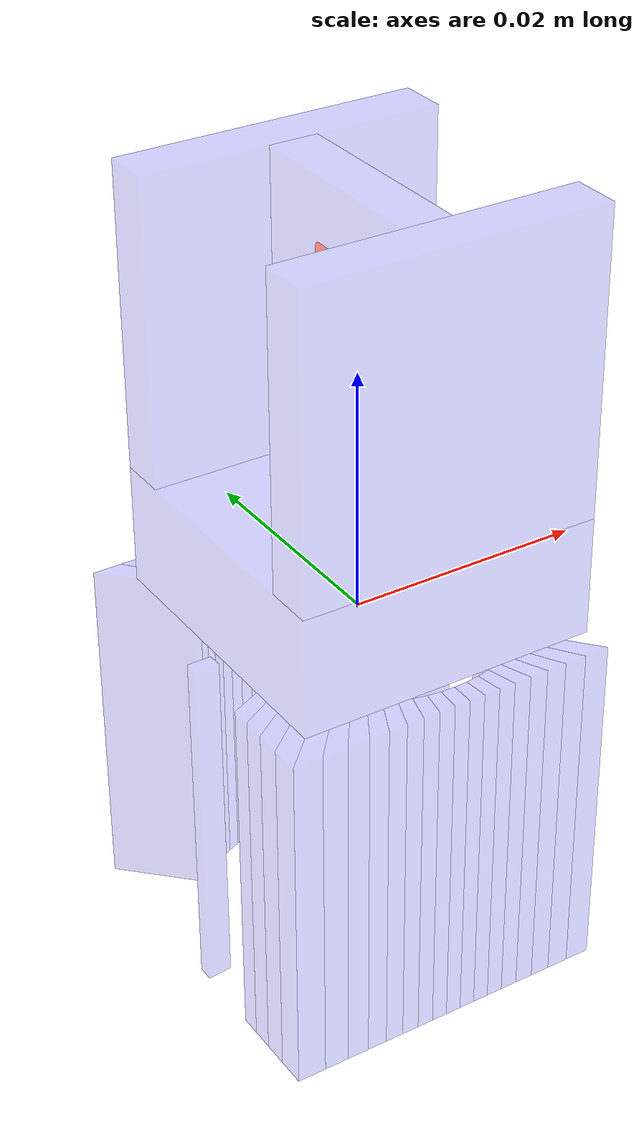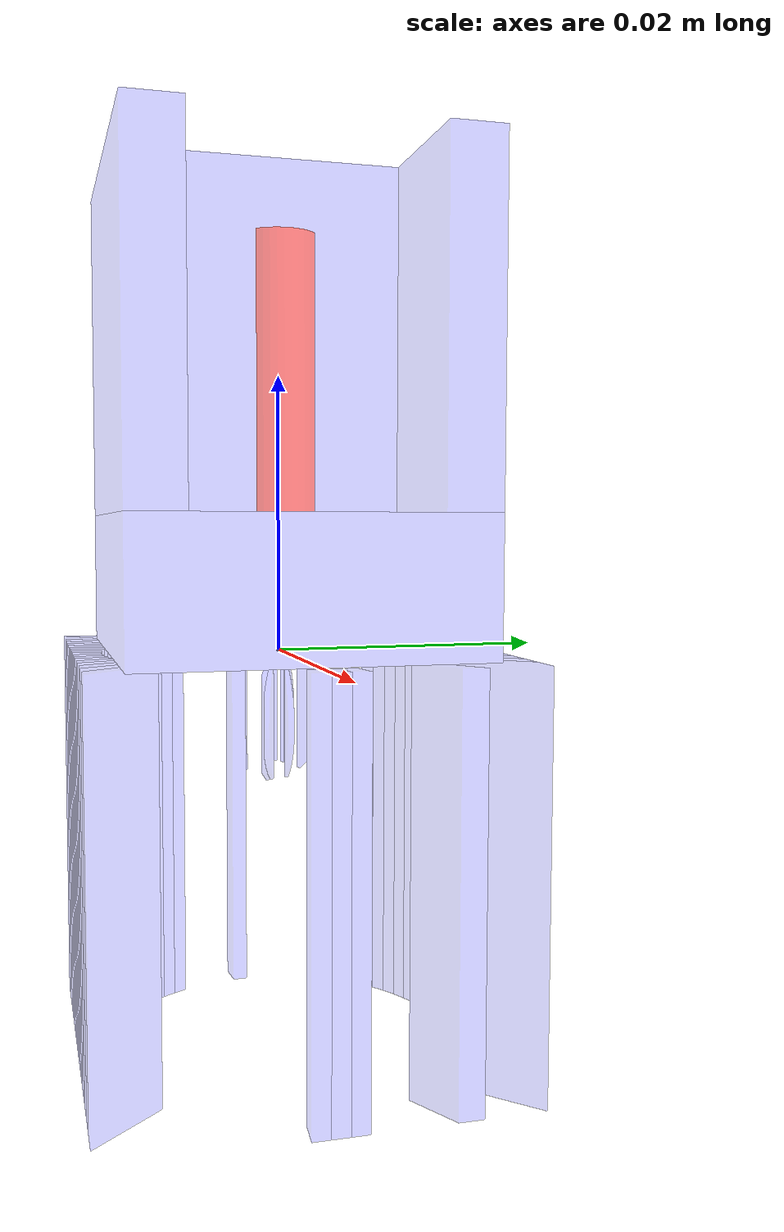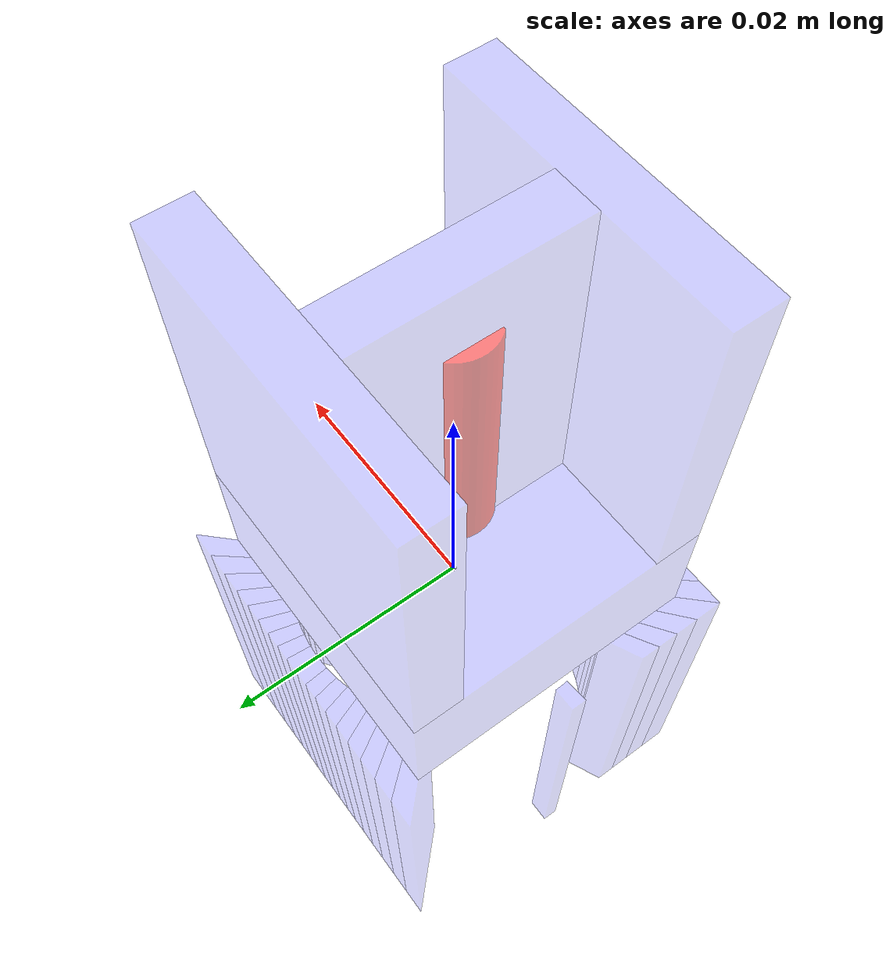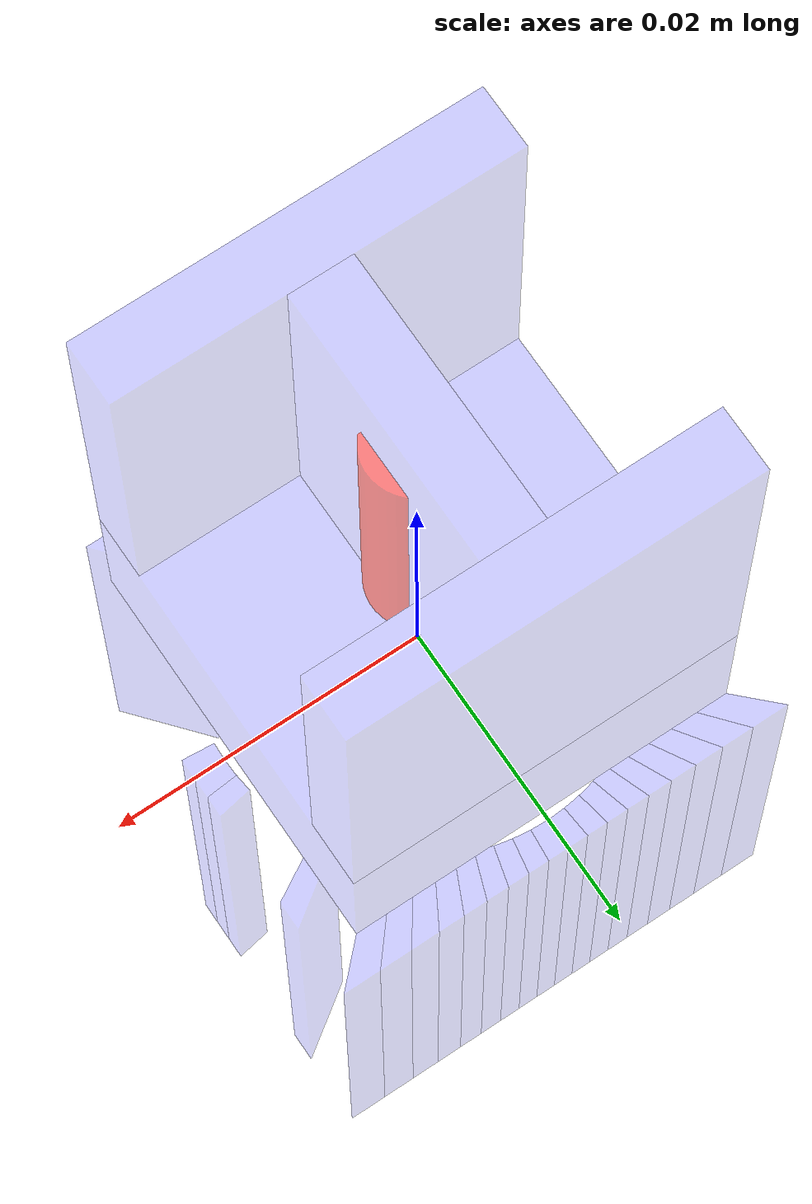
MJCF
<mujoco>
    <option timestep=".001">
        <flag energy="enable" contact="enable" override="enable"/>
    </option>

    <default>
        <default class="hole_geom">
            <geom xyaxes="1 0 0 0 1 0" rgba="0 0 1 0.2"/>
        </default>
        <site size="0.0002" />
        <geom friction="5" />
    </default>

    <visual>
        <global offwidth="960" offheight="720"/>
    </visual>

    <asset>
        <mesh name="peg1" file="../asset/key_peg/key_peg/decomposition/Body1.stl" />
        <mesh name="peg2" file="../asset/key_peg/key_peg/decomposition/Body2.stl" />

        <mesh name="hole1" file="../asset/key_peg/key_hole/decomposition/Body1.stl" />
        <mesh name="hole2" file="../asset/key_peg/key_hole/decomposition/Body2.stl" />
        <mesh name="hole3" file="../asset/key_peg/key_hole/decomposition/Body3.stl" />
        <mesh name="hole4" file="../asset/key_peg/key_hole/decomposition/Body4.stl" />
        <mesh name="hole5" file="../asset/key_peg/key_hole/decomposition/Body5.stl" />
        <mesh name="hole6" file="../asset/key_peg/key_hole/decomposition/Body6.stl" />
        <mesh name="hole7" file="../asset/key_peg/key_hole/decomposition/Body7.stl" />
        <mesh name="hole8" file="../asset/key_peg/key_hole/decomposition/Body8.stl" />
        <mesh name="hole9" file="../asset/key_peg/key_hole/decomposition/Body9.stl" />
        <mesh name="hole10" file="../asset/key_peg/key_hole/decomposition/Body10.stl" />
        <mesh name="hole11" file="../asset/key_peg/key_hole/decomposition/Body11.stl" />
        <mesh name="hole12" file="../asset/key_peg/key_hole/decomposition/Body12.stl" />
        <mesh name="hole13" file="../asset/key_peg/key_hole/decomposition/Body13.stl" />
        <mesh name="hole14" file="../asset/key_peg/key_hole/decomposition/Body14.stl" />
        <mesh name="hole15" file="../asset/key_peg/key_hole/decomposition/Body15.stl" />
        <mesh name="hole16" file="../asset/key_peg/key_hole/decomposition/Body16.stl" />
        <mesh name="hole17" file="../asset/key_peg/key_hole/decomposition/Body17.stl" />
        <mesh name="hole18" file="../asset/key_peg/key_hole/decomposition/Body18.stl" />
        <mesh name="hole19" file="../asset/key_peg/key_hole/decomposition/Body19.stl" />
        <mesh name="hole20" file="../asset/key_peg/key_hole/decomposition/Body20.stl" />
        <mesh name="hole21" file="../asset/key_peg/key_hole/decomposition/Body21.stl" />
        <mesh name="hole22" file="../asset/key_peg/key_hole/decomposition/Body22.stl" />
        <mesh name="hole23" file="../asset/key_peg/key_hole/decomposition/Body23.stl" />
        <mesh name="hole24" file="../asset/key_peg/key_hole/decomposition/Body24.stl" />
        <mesh name="hole25" file="../asset/key_peg/key_hole/decomposition/Body25.stl" />
        <mesh name="hole26" file="../asset/key_peg/key_hole/decomposition/Body26.stl" />
        <mesh name="hole27" file="../asset/key_peg/key_hole/decomposition/Body27.stl" />
        <mesh name="hole28" file="../asset/key_peg/key_hole/decomposition/Body28.stl" />
        <mesh name="hole29" file="../asset/key_peg/key_hole/decomposition/Body29.stl" />
        <mesh name="hole30" file="../asset/key_peg/key_hole/decomposition/Body30.stl" />
        <mesh name="hole31" file="../asset/key_peg/key_hole/decomposition/Body31.stl" />
        <mesh name="hole32" file="../asset/key_peg/key_hole/decomposition/Body32.stl" />
        <mesh name="hole33" file="../asset/key_peg/key_hole/decomposition/Body33.stl" />
        <mesh name="hole34" file="../asset/key_peg/key_hole/decomposition/Body34.stl" />
        <mesh name="hole35" file="../asset/key_peg/key_hole/decomposition/Body35.stl" />
        <mesh name="hole36" file="../asset/key_peg/key_hole/decomposition/Body36.stl" />
        <mesh name="hole37" file="../asset/key_peg/key_hole/decomposition/Body37.stl" />
        <mesh name="hole38" file="../asset/key_peg/key_hole/decomposition/Body38.stl" />
        <mesh name="hole39" file="../asset/key_peg/key_hole/decomposition/Body39.stl" />
        <mesh name="hole40" file="../asset/key_peg/key_hole/decomposition/Body40.stl" />
        <mesh name="hole41" file="../asset/key_peg/key_hole/decomposition/Body41.stl" />
        <mesh name="hole42" file="../asset/key_peg/key_hole/decomposition/Body42.stl" />
        <mesh name="hole43" file="../asset/key_peg/key_hole/decomposition/Body43.stl" />
        <mesh name="hole44" file="../asset/key_peg/key_hole/decomposition/Body44.stl" />
        <mesh name="hole45" file="../asset/key_peg/key_hole/decomposition/Body45.stl" />
        <mesh name="hole46" file="../asset/key_peg/key_hole/decomposition/Body46.stl" />
        <mesh name="hole47" file="../asset/key_peg/key_hole/decomposition/Body47.stl" />
        <mesh name="hole48" file="../asset/key_peg/key_hole/decomposition/Body48.stl" />
        <mesh name="hole49" file="../asset/key_peg/key_hole/decomposition/Body49.stl" />
        <mesh name="hole50" file="../asset/key_peg/key_hole/decomposition/Body50.stl" />
        <mesh name="hole51" file="../asset/key_peg/key_hole/decomposition/Body51.stl" />
        <mesh name="hole52" file="../asset/key_peg/key_hole/decomposition/Body52.stl" />
        <mesh name="hole53" file="../asset/key_peg/key_hole/decomposition/Body53.stl" />
        <mesh name="hole54" file="../asset/key_peg/key_hole/decomposition/Body54.stl" />
        <mesh name="hole55" file="../asset/key_peg/key_hole/decomposition/Body55.stl" />
        <mesh name="hole56" file="../asset/key_peg/key_hole/decomposition/Body56.stl" />
    </asset>

    <worldbody>
        <site name="world" pos="0 0 0" size="0.0001" />

        <light name="top-light" pos="0.0 0.0 0.5" mode="targetbodycom" target="peg" castshadow="false" ambient=".8 .8 .8" />

        <body name="hole" pos="0 0 0">

            <camera name="track" mode="track" pos="+0.03 -0.01 0.01" euler="-0 +60 90" fovy="69.4"/>

            <inertial pos="0 0 0" mass="0.1" diaginertia="0.1 0.1 0.1" />

            <geom type="mesh" mesh="hole1" class="hole_geom"/>
            <geom type="mesh" mesh="hole2" class="hole_geom"/>
            <geom type="mesh" mesh="hole3" class="hole_geom"/>
            <geom type="mesh" mesh="hole4" class="hole_geom"/>
            <geom type="mesh" mesh="hole5" class="hole_geom"/>
            <geom type="mesh" mesh="hole6" class="hole_geom"/>
            <geom type="mesh" mesh="hole7" class="hole_geom"/>
            <geom type="mesh" mesh="hole8" class="hole_geom"/>
            <geom type="mesh" mesh="hole9" class="hole_geom"/>
            <geom type="mesh" mesh="hole10" class="hole_geom"/>
            <geom type="mesh" mesh="hole11" class="hole_geom"/>
            <geom type="mesh" mesh="hole12" class="hole_geom"/>
            <geom type="mesh" mesh="hole13" class="hole_geom"/>
            <geom type="mesh" mesh="hole14" class="hole_geom"/>
            <geom type="mesh" mesh="hole15" class="hole_geom"/>
            <geom type="mesh" mesh="hole16" class="hole_geom"/>
            <geom type="mesh" mesh="hole17" class="hole_geom"/>
            <geom type="mesh" mesh="hole18" class="hole_geom"/>
            <geom type="mesh" mesh="hole19" class="hole_geom"/>
            <geom type="mesh" mesh="hole20" class="hole_geom"/>
            <geom type="mesh" mesh="hole21" class="hole_geom"/>
            <geom type="mesh" mesh="hole22" class="hole_geom"/>
            <geom type="mesh" mesh="hole23" class="hole_geom"/>
            <geom type="mesh" mesh="hole24" class="hole_geom"/>
            <geom type="mesh" mesh="hole25" class="hole_geom"/>
            <geom type="mesh" mesh="hole26" class="hole_geom"/>
            <geom type="mesh" mesh="hole27" class="hole_geom"/>
            <geom type="mesh" mesh="hole28" class="hole_geom"/>
            <geom type="mesh" mesh="hole29" class="hole_geom"/>
            <geom type="mesh" mesh="hole30" class="hole_geom"/>
            <geom type="mesh" mesh="hole31" class="hole_geom"/>
            <geom type="mesh" mesh="hole32" class="hole_geom"/>
            <geom type="mesh" mesh="hole33" class="hole_geom"/>
            <geom type="mesh" mesh="hole34" class="hole_geom"/>
            <geom type="mesh" mesh="hole35" class="hole_geom"/>
            <geom type="mesh" mesh="hole36" class="hole_geom"/>
            <geom type="mesh" mesh="hole37" class="hole_geom"/>
            <geom type="mesh" mesh="hole38" class="hole_geom"/>
            <geom type="mesh" mesh="hole39" class="hole_geom"/>
            <geom type="mesh" mesh="hole40" class="hole_geom"/>
            <geom type="mesh" mesh="hole41" class="hole_geom"/>
            <geom type="mesh" mesh="hole42" class="hole_geom"/>
            <geom type="mesh" mesh="hole43" class="hole_geom"/>
            <geom type="mesh" mesh="hole44" class="hole_geom"/>
            <geom type="mesh" mesh="hole45" class="hole_geom"/>
            <geom type="mesh" mesh="hole46" class="hole_geom"/>
            <geom type="mesh" mesh="hole47" class="hole_geom"/>
            <geom type="mesh" mesh="hole48" class="hole_geom"/>
            <geom type="mesh" mesh="hole49" class="hole_geom"/>
            <geom type="mesh" mesh="hole50" class="hole_geom"/>
            <geom type="mesh" mesh="hole51" class="hole_geom"/>
            <geom type="mesh" mesh="hole52" class="hole_geom"/>
            <geom type="mesh" mesh="hole53" class="hole_geom"/>
            <geom type="mesh" mesh="hole54" class="hole_geom"/>
            <geom type="mesh" mesh="hole55" class="hole_geom"/>
            <geom type="mesh" mesh="hole56" class="hole_geom"/>

        </body>

        <body name="peg" pos="0 0 0">
            <inertial pos="0 0 0" mass="1.0" diaginertia="0.1 0.1 0.1" />

            <site name="peg/origin" pos="0 0 0" />
            <site name="peg/sensor" pos="0 0 0" />

            <geom type="mesh" mesh="peg1" xyaxes="1 0 0 0 1 0" rgba="1 0 0 0.5"/>
            <geom type="mesh" mesh="peg2" xyaxes="1 0 0 0 1 0" rgba="1 0 0 0.5"/>

            <joint name="trans_x" type="slide" axis="1 0 0" limited="false"/>
            <joint name="trans_y" type="slide" axis="0 1 0" limited="false"/>
            <joint name="trans_z" type="slide" axis="0 0 1" limited="false"/>
            <joint name="hinge_x" type="hinge" axis="1 0 0" limited="false"/>
            <joint name="hinge_y" type="hinge" axis="0 1 0" limited="false"/>
            <joint name="hinge_z" type="hinge" axis="0 0 1" limited="false"/>
        </body>

    </worldbody>

    <actuator>
        <position name="x" forcelimited="true" forcerange="-20 20" joint="trans_x" kp="100000" kv="100" />
        <position name="y" forcelimited="true" forcerange="-20 20" joint="trans_y" kp="100000" kv="100" />
        <position name="z" forcelimited="true" forcerange="-20 20" joint="trans_z" kp="100000" kv="100" />
        <position name="rx" forcelimited="true" forcerange="-5 5" joint="hinge_x" kp="50" kv="5" />
        <position name="ry" forcelimited="true" forcerange="-5 5" joint="hinge_y" kp="50" kv="5"/>
        <position name="rz" forcelimited="true" forcerange="-5 5" joint="hinge_z" kp="50" kv="5"/>
    </actuator>

    <sensor>
        <force name="force_sensor" site="peg/sensor" />
        <torque name="torque_sensor" site="peg/sensor" />
        <framepos name="peg_pos" objtype="site" objname="peg/origin"/>
        <framequat name="peg_quat" objtype="site" objname="peg/origin"/>
    </sensor>
</mujoco>
